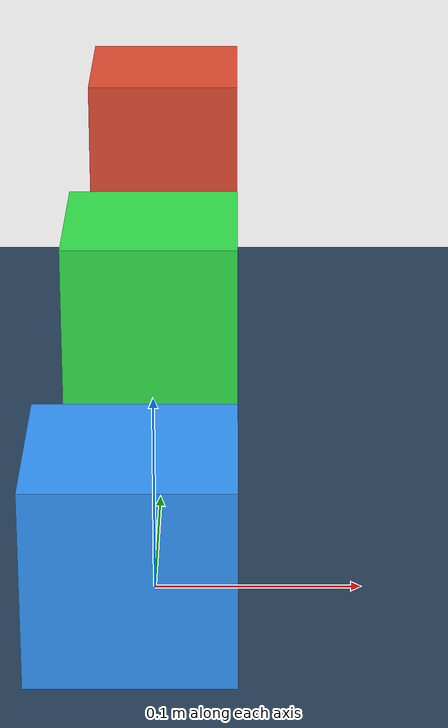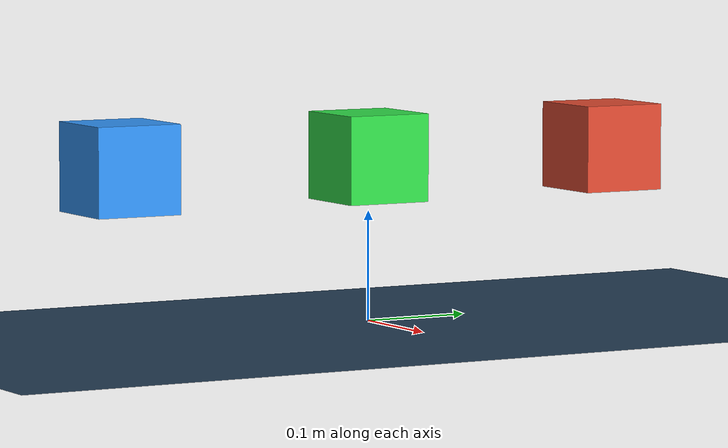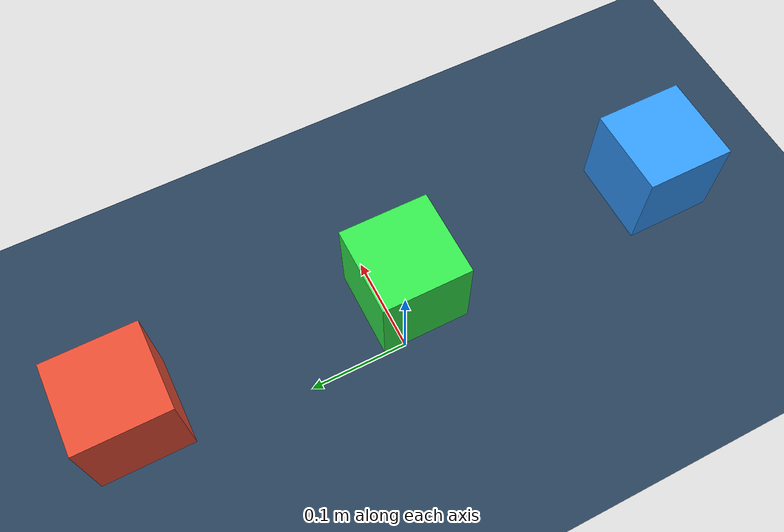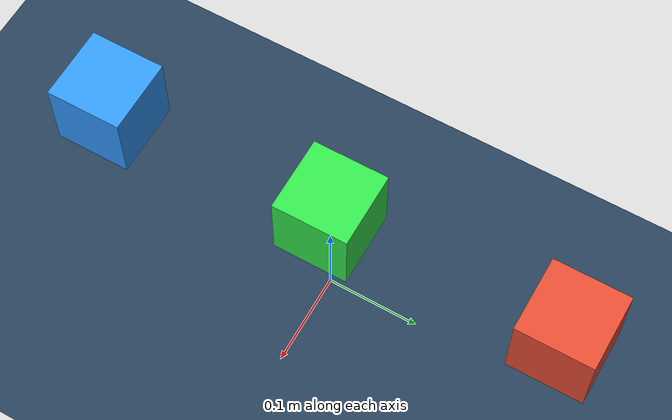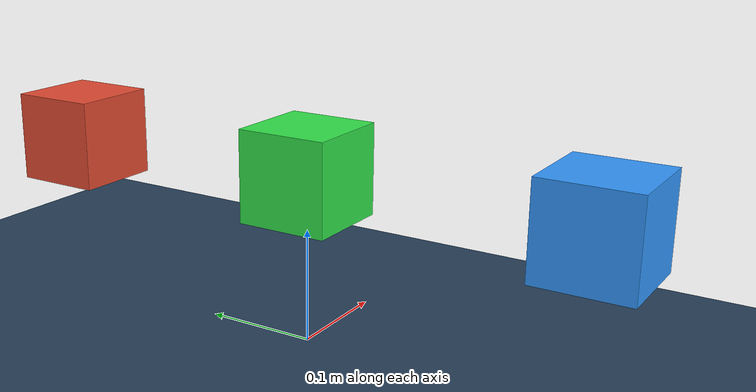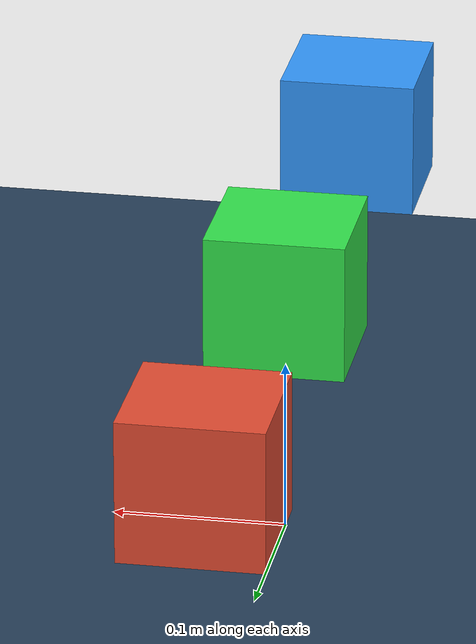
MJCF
<?xml version="1.0" ?>
<mujoco model="contact_demo">
  <option timestep="0.001" gravity="0 0 -9.81"/>

  <visual>
    <headlight diffuse="0.6 0.6 0.6" ambient="0.3 0.3 0.3" specular="0 0 0"/>
    <rgba haze="0.15 0.25 0.35 1"/>
    <global azimuth="160" elevation="-25"/>
  </visual>

  <asset>
    <texture type="skybox" builtin="gradient" rgb1="0.3 0.5 0.7" rgb2="0 0 0"
             width="512" height="3072"/>
    <texture type="2d" name="groundplane" builtin="checker" mark="edge"
             rgb1="0.2 0.3 0.4" rgb2="0.1 0.2 0.3" markrgb="0.8 0.8 0.8"
             width="300" height="300"/>
    <material name="groundplane" texture="groundplane" texuniform="true"
              texrepeat="5 5" reflectance="0.2"/>
  </asset>

  <worldbody>
    <light pos="0 -2 3" dir="0 1 -1" directional="true"/>

    <!-- 床: friction を小さくし、max(floor, block) = block 側が支配するように -->
    <geom name="floor" type="plane" size="0 0 0.05" material="groundplane"
          friction="0.01 0.005 0.001" contype="7" conaffinity="7" condim="3"/>

    <!-- ブロック (低摩擦): 氷上を滑るイメージ -->
    <body name="block_lo" pos="0 -0.25 0.15">
      <freejoint/>
      <geom name="block_lo" type="box" size="0.04 0.04 0.04" mass="0.5"
            rgba="0.2 0.6 1.0 1" friction="0.05 0.005 0.001"
            contype="1" conaffinity="1" condim="3"/>
    </body>

    <!-- ブロック (中摩擦): 木材程度 -->
    <body name="block_mid" pos="0 0.0 0.15">
      <freejoint/>
      <geom name="block_mid" type="box" size="0.04 0.04 0.04" mass="0.5"
            rgba="0.2 0.9 0.3 1" friction="0.3 0.005 0.001"
            contype="2" conaffinity="2" condim="3"/>
    </body>

    <!-- ブロック (高摩擦): ゴム程度 -->
    <body name="block_hi" pos="0 0.25 0.15">
      <freejoint/>
      <geom name="block_hi" type="box" size="0.04 0.04 0.04" mass="0.5"
            rgba="0.9 0.3 0.2 1" friction="0.8 0.005 0.001"
            contype="4" conaffinity="4" condim="3"/>
    </body>
  </worldbody>
</mujoco>
